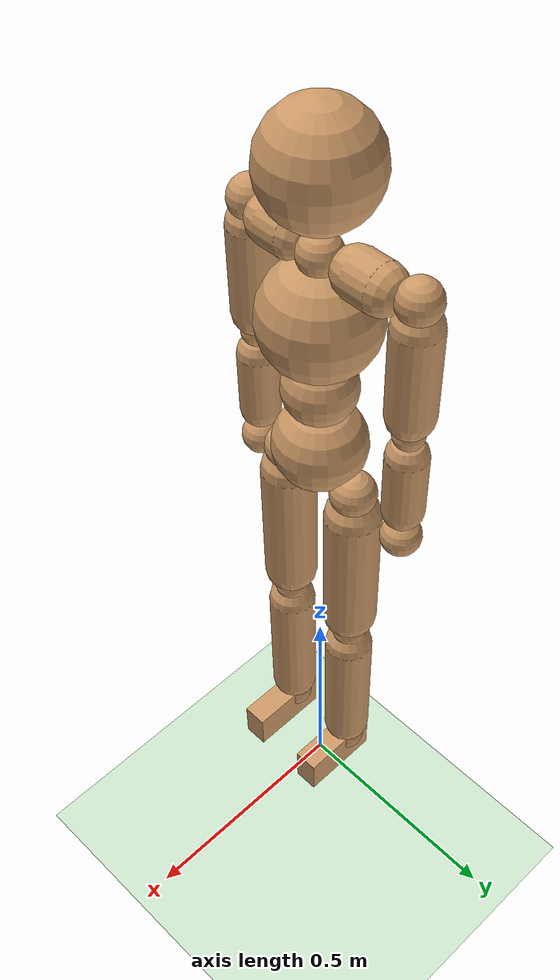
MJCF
<mujoco model="humanoid">
    <compiler angle="degree" inertiafromgeom="true"/>
    <default>
        <joint armature="1" damping="1" limited="true"/>
        <geom conaffinity="1" condim="1" contype="1" margin="0.001" material="geom" rgba="0.8 0.6 .4 1"/>
        <motor ctrllimited="true" ctrlrange="-.4 .4"/>
    </default>
    <option integrator="RK4" iterations="50" solver="PGS" timestep="0.003">
    </option>
    <size nkey="5" nuser_geom="1"/>
    <visual>
        <map fogend="5" fogstart="3"/>
    </visual>
    <asset>
        <texture builtin="gradient" height="100" rgb1=".4 .5 .6" rgb2="0 0 0" type="skybox" width="100"/>
        <texture builtin="flat" height="1278" mark="cross" markrgb="1 1 1" name="texgeom" random="0.01" rgb1="0.8 0.6 0.4" rgb2="0.8 0.6 0.4" type="cube" width="127"/>
        <texture builtin="checker" height="100" name="texplane" rgb1="0 0 0" rgb2="0.8 0.8 0.8" type="2d" width="100"/>
        <material name="MatPlane" reflectance="0.5" shininess="1" specular="1" texrepeat="60 60" texture="texplane"/>
        <material name="geom" texture="texgeom" texuniform="true"/>
    </asset>
    <worldbody>
        <light cutoff="100" diffuse="1 1 1" dir="-0 0 -1.3" directional="true" exponent="1" pos="0 0 1.3" specular=".1 .1 .1"/>
        <geom condim="3" friction="1 .1 .1" material="MatPlane" name="floor" pos="0 0 0" rgba="0.8 0.9 0.8 1" size="20 20 0.125" type="plane"/>
        <body name="root" pos="0 0 1">
            <geom name="root" pos="0 0 0.07" size=".09" type="sphere"/>
            <joint armature="0" damping="0" limited="false" name="root" pos="0 0 0" stiffness="0" type="free"/>
            <body name="joint_waist" pos="0 0 0.205">
                <geom name="joint_waist" pos="0 0 0" size="0.07" type="sphere"/>
            </body>
            <body name="chest" pos="0 0 0.236151">
                <geom name="chest" pos="0 0 0.12" size=".11" type="sphere"/>
                <joint armature="0.02" axis="1 0 0" damping="5" name="chest_x" pos="0 0 0" range="-68.75 68.75" stiffness="10" type="hinge"/>
                <joint armature="0.02" axis="0 1 0" damping="5" name="chest_y" pos="0 0 0" range="-68.75 68.75" stiffness="10" type="hinge"/>
                <joint armature="0.02" axis="0 0 1" damping="5" name="chest_z" pos="0 0 0" range="-68.75 68.75" stiffness="20" type="hinge"/>
                <body name="neck" pos="0 0 0.223894">
                    <geom name="neck" pos="0 0 0.175" size=".1025" type="sphere"/>
                    <joint armature="0.02" axis="1 0 0" damping="5" name="neck_x" pos="0 0 0" range="-57.3 57.3" stiffness="10" type="hinge"/>
                    <joint armature="0.02" axis="0 1 0" damping="5" name="neck_y" pos="0 0 0" range="-57.3 57.3" stiffness="10" type="hinge"/>
                    <joint armature="0.02" axis="0 0 1" damping="5" name="neck_z" pos="0 0 0" range="-57.3 57.3" stiffness="20" type="hinge"/>
                    <body name="joint_neck" pos="0 0 0.02">
                        <geom name="joint_neck" pos="0 0 0" size="0.04" type="sphere"/>
                    </body>
                </body>
                <body name="right_clavicle" pos="-0.011 -0.07 0.24">
                    <geom fromto="0 0 0 0 -0.05 0" name="right_clavicle" size="0.045" type="capsule"/>
                </body>
                <body name="right_shoulder" pos="-0.02405 -0.18311 0.2435">
                    <geom fromto="0 0 -0.05 0 0 -0.23" name="right_shoulder" size="0.045" type="capsule"/>
                    <joint armature="0.02" axis="1 0 0" damping="5" name="right_shoulder_x" pos="0 0 0" range="-180 28.65" stiffness="10" type="hinge"/>
                    <joint armature="0.02" axis="0 1 0" damping="5" name="right_shoulder_y" pos="0 0 0" range="-85.94 85.94" stiffness="10" type="hinge"/>
                    <joint armature="0.02" axis="0 0 1" damping="5" name="right_shoulder_z" pos="0 0 0" range="-40.11 180" stiffness="20" type="hinge"/>
                    <body name="joint_right_shoulder" pos="0 0 0">
                        <geom name="joint_right_shoulder" pos="0 0 0" size="0.04" type="sphere"/>
                    </body>
                    <body name="right_elbow" pos="0 0 -0.274788">
                        <geom fromto="0 0 -0.0525 0 0 -0.1875" name="right_elbow" size="0.04" type="capsule"/>
                        <joint armature="0" damping="0" limited="false" axis="0 -1 0" name="right_elbow" pos="0 0 0" range="10 180" stiffness="0" type="hinge"/>
                        <body name="joint_right_elbow" pos="0 0 0">
                            <geom name="joint_right_elbow" pos="0 0 0" size="0.03" type="sphere"/>
                        </body>
                        <body name="right_wrist" pos="0 0 -0.258947">
                            <geom name="right_wrist" pos="0 0 0" size="0.04" type="sphere"/>
                        </body>
                    </body>
                </body>
                <body name="left_clavicle" pos="-0.011 0.07 0.24">
                    <geom fromto="0 0 0 0 0.05 0" name="left_clavicle" size="0.045" type="capsule"/>
                </body>
                <body name="left_shoulder" pos="-0.02405 0.18311 0.2435">
                    <geom fromto="0 0 -0.05 0 0 -0.23" name="left_shoulder" size="0.045" type="capsule"/>
                    <joint armature="0.02" axis="1 0 0" damping="5" name="left_shoulder_x" pos="0 0 0" range="-28.65 180" stiffness="10" type="hinge"/>
                    <joint armature="0.02" axis="0 1 0" damping="5" name="left_shoulder_y" pos="0 0 0" range="-85.94 85.94" stiffness="10" type="hinge"/>
                    <joint armature="0.02" axis="0 0 1" damping="5" name="left_shoulder_z" pos="0 0 0" range="-40.11 180" stiffness="20" type="hinge"/>
                    <body name="joint_left_shoulder" pos="0 0 0">
                        <geom name="joint_left_shoulder" pos="0 0 0" size="0.04" type="sphere"/>
                    </body>
                    <body name="left_elbow" pos="0 0 -0.274788">
                        <geom fromto="0 0 -0.0525 0 0 -0.1875" name="left_elbow" size="0.04" type="capsule"/>
                        <joint armature="0" damping="0" limited="false" axis="0 -1 0" name="left_elbow" pos="0 0 0" range="10 180" stiffness="0" type="hinge"/>
                        <body name="joint_left_elbow" pos="0 0 0">
                            <geom name="joint_left_elbow" pos="0 0 0" size="0.03" type="sphere"/>
                        </body>
                        <body name="left_wrist" pos="0 0 -0.258947">
                            <geom name="left_wrist" pos="0 0 0" size="0.04" type="sphere"/>
                        </body>
                    </body>
                </body>
            </body>
            <body name="right_hip" pos="0 -0.084887 0">
                <geom fromto="0 0 -0.06 0 0 -0.36" name="right_hip" size="0.055" type="capsule"/>
                <joint armature="0.02" axis="1 0 0" damping="5" name="right_hip_x" pos="0 0 0" range="-68.75 68.75" stiffness="10" type="hinge"/>
                <joint armature="0.02" axis="0 1 0" damping="5" name="right_hip_y" pos="0 0 0" range="-57.3 57.3" stiffness="10" type="hinge"/>
                <joint armature="0.02" axis="0 0 1" damping="5" name="right_hip_z" pos="0 0 0" range="-90 147.25" stiffness="20" type="hinge"/>
                <body name="joint_right_hip" pos="0 0 0">
                    <geom name="joint_right_hip" pos="0 0 0" size="0.045" type="sphere"/>
                </body>
                <body name="right_knee" pos="0 0 -0.421546">
                    <geom fromto="0 0 -0.045 0 0 -0.355" name="right_knee" size="0.05" type="capsule"/>
                    <joint armature="0" damping="0" limited="false" axis="0 0 1" name="right_knee" pos="0 0 0" range="-180 0" stiffness="0" type="hinge"/>
                    <body name="joint_right_knee" pos="0 0 0">
                        <geom name="joint_right_knee" pos="0 0 0" size="0.035" type="sphere"/>
                    </body>
                    <body name="right_ankle" pos="0 0 -0.40987">
                        <body name="joint_right_ankle" pos="0 0 0">
                            <geom name="joint_right_ankle" pos="0 0 0" size="0.04" type="sphere"/>
                        </body>
                        <geom name="right_ankle" pos="0.045 0 -0.0225" size="0.088 0.027 0.045" type="box"/>
                        <joint armature="0.02" axis="1 0 0" damping="5" name="right_ankle_x" pos="0 0 0" range="-57.3 57.3" stiffness="10" type="hinge"/>
                        <joint armature="0.02" axis="0 1 0" damping="5" name="right_ankle_y" pos="0 0 0" range="-57.3 57.3" stiffness="10" type="hinge"/>
                        <joint armature="0.02" axis="0 0 1" damping="5" name="right_ankle_z" pos="0 0 0" range="-90 90" stiffness="20" type="hinge"/>
                    </body>
                </body>
            </body>
            <body name="left_hip" pos="0 0.084887 0">
                <geom fromto="0 0 -0.06 0 0 -0.36" name="left_hip" size="0.055" type="capsule"/>
                <joint armature="0.02" axis="1 0 0" damping="5" name="left_hip_x" pos="0 0 0" range="-68.75 68.75" stiffness="10" type="hinge"/>
                <joint armature="0.02" axis="0 1 0" damping="5" name="left_hip_y" pos="0 0 0" range="-57.3 57.3" stiffness="10" type="hinge"/>
                <joint armature="0.02" axis="0 0 1" damping="5" name="left_hip_z" pos="0 0 0" range="-90 147.25" stiffness="20" type="hinge"/>
                <body name="joint_left_hip" pos="0 0 0">
                    <geom name="joint_left_hip" pos="0 0 0" size="0.045" type="sphere"/>
                </body>
                <body name="left_knee" pos="0 0 -0.421546">
                    <geom fromto="0 0 -0.045 0 0 -0.355" name="left_knee" size="0.05" type="capsule"/>
                    <joint armature="0" damping="0" limited="false" axis="0 -1 0" name="left_knee" pos="0 0 0" range="-180 0" stiffness="0" type="hinge"/>
                    <body name="joint_left_knee" pos="0 0 0">
                        <geom name="joint_left_knee" pos="0 0 0" size="0.035" type="sphere"/>
                    </body>
                    <body name="left_ankle" pos="0 0 -0.40987">
                        <geom name="left_ankle" pos="0.045 0 -0.0225" size="0.088 0.027 0.045" type="box"/>
                        <joint armature="0.02" axis="1 0 0" damping="5" name="left_ankle_x" pos="0 0 0" range="-57.3 57.3" stiffness="10" type="hinge"/>
                        <joint armature="0.02" axis="0 1 0" damping="5" name="left_ankle_y" pos="0 0 0" range="-57.3 57.3" stiffness="10" type="hinge"/>
                        <joint armature="0.02" axis="0 0 1" damping="5" name="left_ankle_z" pos="0 0 0" range="-90 90" stiffness="20" type="hinge"/>
                        <body name="joint_left_ankle" pos="0 0 0">
                            <geom name="joint_left_ankle" pos="0 0 0" size="0.04" type="sphere"/>
                        </body>
                    </body>
                </body>
            </body>
        </body>
    </worldbody>

    <actuator>
        <motor gear="100" joint="chest_x" name="chest_x"/>
        <motor gear="100" joint="chest_y" name="chest_y"/>
        <motor gear="100" joint="chest_z" name="chest_z"/>

        <motor gear="100" joint="neck_x" name="neck_x"/>
        <motor gear="100" joint="neck_y" name="neck_y"/>
        <motor gear="100" joint="neck_z" name="neck_z"/>

        <motor gear="25" joint="right_shoulder_x" name="right_shoulder_x"/>
        <motor gear="25" joint="right_shoulder_y" name="right_shoulder_y"/>
        <motor gear="25" joint="right_shoulder_z" name="right_shoulder_z"/>
25
        <motor gear="25" joint="right_elbow" name="right_elbow"/>

        <motor gear="25" joint="left_shoulder_x" name="left_shoulder_x"/>
        <motor gear="25" joint="left_shoulder_y" name="left_shoulder_y"/>
        <motor gear="25" joint="left_shoulder_z" name="left_shoulder_z"/>

        <motor gear="25" joint="left_elbow" name="left_elbow"/>

        <motor gear="100" joint="right_hip_x" name="right_hip_x"/>
        <motor gear="300" joint="right_hip_y" name="right_hip_y"/>
        <motor gear="100" joint="right_hip_z" name="right_hip_z"/>

        <motor gear="200" joint="right_knee" name="right_knee"/>

        <motor gear="100" joint="right_ankle_x" name="right_ankle_x"/>
        <motor gear="100" joint="right_ankle_y" name="right_ankle_y"/>
        <motor gear="100" joint="right_ankle_z" name="right_ankle_z"/>

        <motor gear="100" joint="left_hip_x" name="left_hip_x"/>
        <motor gear="300" joint="left_hip_y" name="left_hip_y"/>
        <motor gear="100" joint="left_hip_z" name="left_hip_z"/>

        <motor gear="200" joint="left_knee" name="left_knee"/>

        <motor gear="100" joint="left_ankle_x" name="left_ankle_x"/>
        <motor gear="100" joint="left_ankle_y" name="left_ankle_y"/>
        <motor gear="100" joint="left_ankle_z" name="left_ankle_z"/>
    </actuator>
</mujoco>
